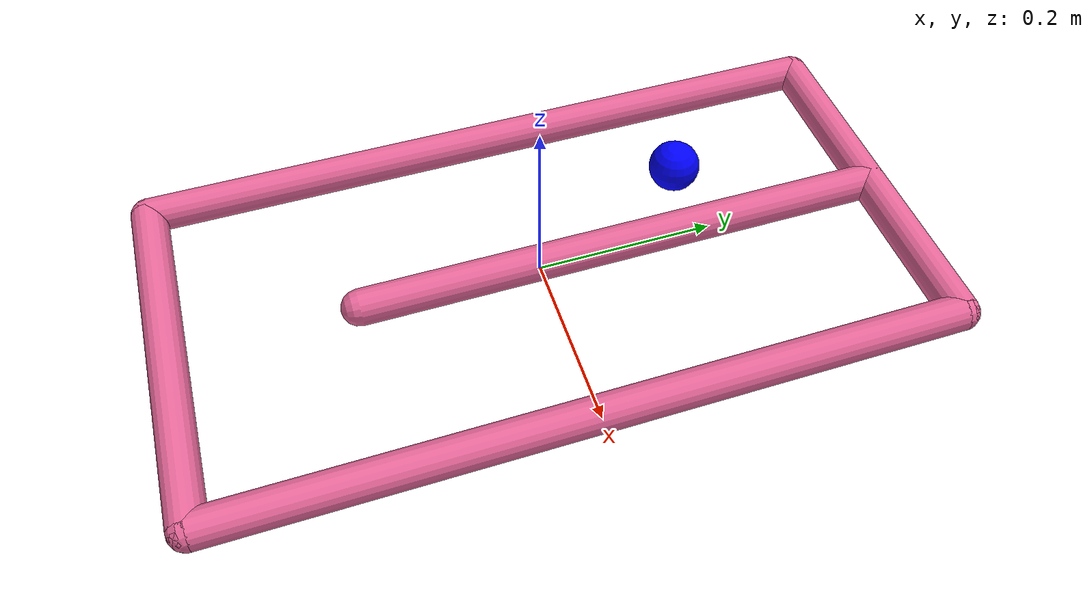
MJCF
<mujoco model="twod_point">
    <compiler inertiafromgeom="true" angle="radian" coordinate="local" />
    <option timestep="0.01" gravity="0 0 0" iterations="20" integrator="Euler" />
    <default>
        <joint limited="false" damping="0" />
        <geom contype="2" conaffinity="1" condim="1" friction=".5 .1 .1" density="1000" margin="0.002" />
    </default>

    <worldbody>
        <!-- Pointmass -->
        <body name="particle" pos="-0.1 0.2 0">
            <geom name="particle_geom" type="sphere" size="0.03" rgba="0.0 0.0 1.0 1" contype="1"/>
            <site name="particle_site" pos="0 0 0" size="0.01" />
            <joint name="ball_x" type="slide" pos="0 0 0" axis="1 0 0" />
            <joint name="ball_y" type="slide" pos="0 0 0" axis="0 1 0" />
        </body>

        <!-- Arena -->
        <geom conaffinity="1" fromto="-.2 -.4 .01 .2 -.4 .01" name="sideS" rgba="0.9 0.4 0.6 1" size=".02" type="capsule"/>
        <geom conaffinity="1" fromto=" .2 -.4 .01 .2  .4 .01" name="sideE" rgba="0.9 0.4 0.6 1" size=".02" type="capsule"/>
        <geom conaffinity="1" fromto="-.2  .4 .01 .2  .4 .01" name="sideN" rgba="0.9 0.4 0.6 1" size=".02" type="capsule"/>
        <geom conaffinity="1" fromto="-.2 -.4 .01 -.2 .4 .01" name="sideW" rgba="0.9 0.4 0.6 1" size=".02" type="capsule"/>
        <geom conaffinity="1" fromto="0 -.2 .01 0 .4 .01" name="wall" rgba="0.9 0.4 0.6 1" size=".02" type="capsule"/>

    </worldbody>

    <actuator>
        <motor joint="ball_x" ctrlrange="-0.5 0.5" ctrllimited="true" gear="9" />
        <motor joint="ball_y" ctrlrange="-0.5 0.5" ctrllimited="true" gear="9" />
    </actuator>
</mujoco>
